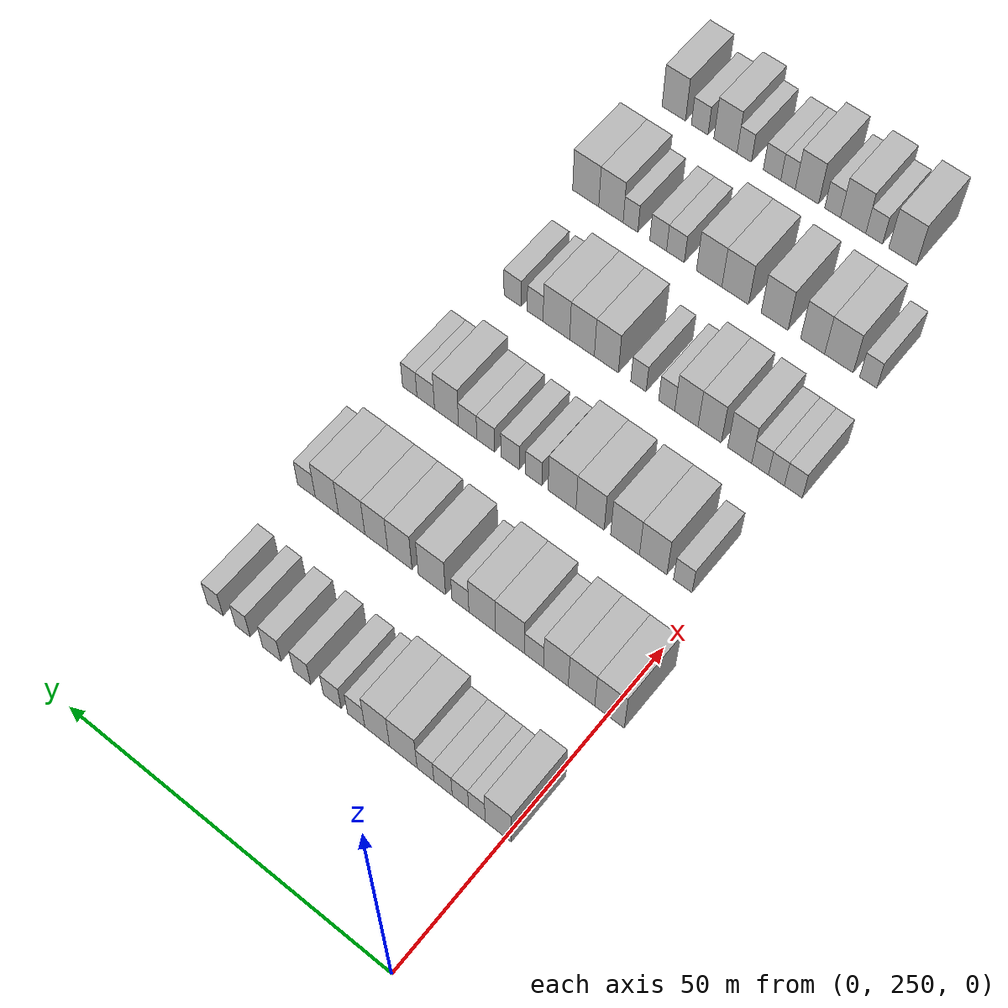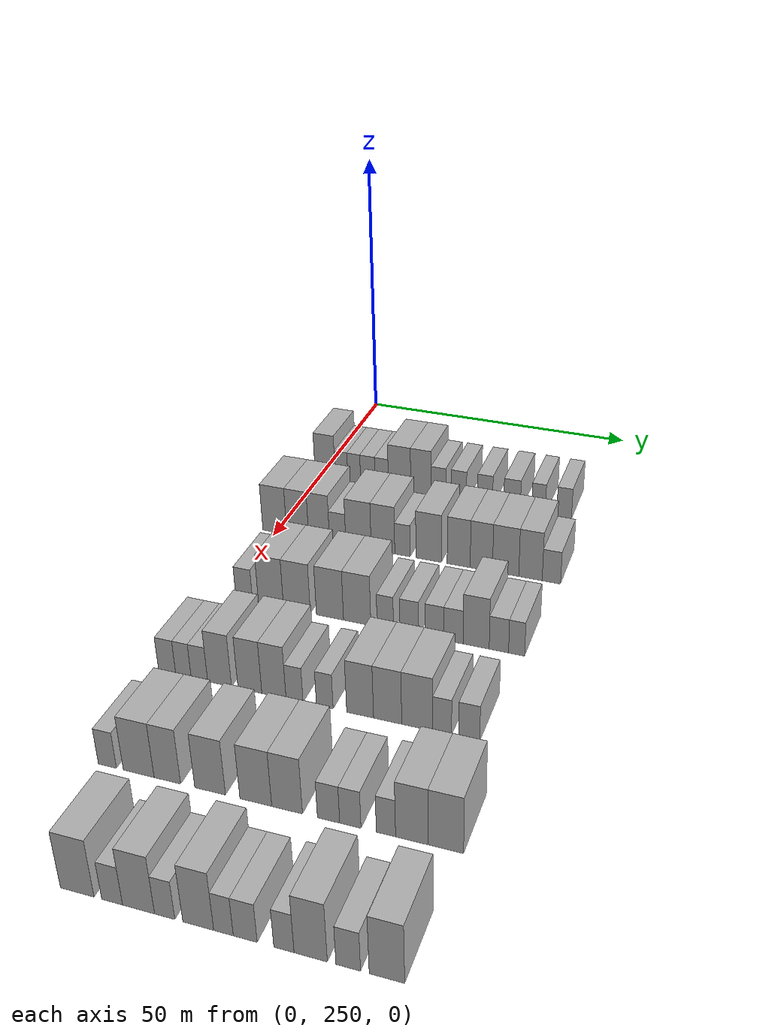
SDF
<sdf version="1.6">
 <world name="default">
  <model name="building_146">
   <static>1</static>
   <pose>25.0000 251.1368 0 0.000000 0.000000 0.000000</pose>
   <link name="link">
    <pose>0 0 4.50 0 0 0</pose>
    <collision name="collision"><geometry><box><size>10.0000 3.8870 9.0000</size></box></geometry></collision>
    <visual name="visual">
     <cast_shadows>0</cast_shadows>
     <geometry><box><size>10.0000 3.8870 9.0000</size></box></geometry>
     <material>
      <script>
       <uri>model://HANNAS_wall/materials/scripts</uri>
       <uri>model://HANNAS_wall/materials/textures</uri>
       <name>vrc/HANNAS_wall</name>
      </script>
     </material>
    </visual>
   </link>
  </model>
  <model name="building_147">
   <static>1</static>
   <pose>25.0000 254.3077 0 0.000000 0.000000 0.000000</pose>
   <link name="link">
    <pose>0 0 3.00 0 0 0</pose>
    <collision name="collision"><geometry><box><size>10.0000 2.4549 6.0000</size></box></geometry></collision>
    <visual name="visual">
     <cast_shadows>0</cast_shadows>
     <geometry><box><size>10.0000 2.4549 6.0000</size></box></geometry>
     <material>
      <script>
       <uri>model://HANNAS_wall/materials/scripts</uri>
       <uri>model://HANNAS_wall/materials/textures</uri>
       <name>vrc/HANNAS_wall</name>
      </script>
     </material>
    </visual>
   </link>
  </model>
  <model name="building_148">
   <static>1</static>
   <pose>25.0000 256.7558 0 0.000000 0.000000 0.000000</pose>
   <link name="link">
    <pose>0 0 3.00 0 0 0</pose>
    <collision name="collision"><geometry><box><size>10.0000 2.4412 6.0000</size></box></geometry></collision>
    <visual name="visual">
     <cast_shadows>0</cast_shadows>
     <geometry><box><size>10.0000 2.4412 6.0000</size></box></geometry>
     <material>
      <script>
       <uri>model://HANNAS_wall/materials/scripts</uri>
       <uri>model://HANNAS_wall/materials/textures</uri>
       <name>vrc/HANNAS_wall</name>
      </script>
     </material>
    </visual>
   </link>
  </model>
  <model name="building_149">
   <static>1</static>
   <pose>25.0000 259.3535 0 0.000000 0.000000 0.000000</pose>
   <link name="link">
    <pose>0 0 3.00 0 0 0</pose>
    <collision name="collision"><geometry><box><size>10.0000 2.7543 6.0000</size></box></geometry></collision>
    <visual name="visual">
     <cast_shadows>0</cast_shadows>
     <geometry><box><size>10.0000 2.7543 6.0000</size></box></geometry>
     <material>
      <script>
       <uri>model://HANNAS_wall/materials/scripts</uri>
       <uri>model://HANNAS_wall/materials/textures</uri>
       <name>vrc/HANNAS_wall</name>
      </script>
     </material>
    </visual>
   </link>
  </model>
  <model name="building_150">
   <static>1</static>
   <pose>25.0000 261.9998 0 0.000000 0.000000 0.000000</pose>
   <link name="link">
    <pose>0 0 3.00 0 0 0</pose>
    <collision name="collision"><geometry><box><size>10.0000 2.5383 6.0000</size></box></geometry></collision>
    <visual name="visual">
     <cast_shadows>0</cast_shadows>
     <geometry><box><size>10.0000 2.5383 6.0000</size></box></geometry>
     <material>
      <script>
       <uri>model://HANNAS_wall/materials/scripts</uri>
       <uri>model://HANNAS_wall/materials/textures</uri>
       <name>vrc/HANNAS_wall</name>
      </script>
     </material>
    </visual>
   </link>
  </model>
  <model name="building_151">
   <static>1</static>
   <pose>25.0000 265.3684 0 0.000000 0.000000 0.000000</pose>
   <link name="link">
    <pose>0 0 4.50 0 0 0</pose>
    <collision name="collision"><geometry><box><size>10.0000 4.1990 9.0000</size></box></geometry></collision>
    <visual name="visual">
     <cast_shadows>0</cast_shadows>
     <geometry><box><size>10.0000 4.1990 9.0000</size></box></geometry>
     <material>
      <script>
       <uri>model://HANNAS_wall/materials/scripts</uri>
       <uri>model://HANNAS_wall/materials/textures</uri>
       <name>vrc/HANNAS_wall</name>
      </script>
     </material>
    </visual>
   </link>
  </model>
  <model name="building_152">
   <static>1</static>
   <pose>25.0000 269.3768 0 0.000000 0.000000 0.000000</pose>
   <link name="link">
    <pose>0 0 4.50 0 0 0</pose>
    <collision name="collision"><geometry><box><size>10.0000 3.8179 9.0000</size></box></geometry></collision>
    <visual name="visual">
     <cast_shadows>0</cast_shadows>
     <geometry><box><size>10.0000 3.8179 9.0000</size></box></geometry>
     <material>
      <script>
       <uri>model://HANNAS_wall/materials/scripts</uri>
       <uri>model://HANNAS_wall/materials/textures</uri>
       <name>vrc/HANNAS_wall</name>
      </script>
     </material>
    </visual>
   </link>
  </model>
  <model name="building_153">
   <static>1</static>
   <pose>25.0000 272.6250 0 0.000000 0.000000 0.000000</pose>
   <link name="link">
    <pose>0 0 3.00 0 0 0</pose>
    <collision name="collision"><geometry><box><size>10.0000 2.6784 6.0000</size></box></geometry></collision>
    <visual name="visual">
     <cast_shadows>0</cast_shadows>
     <geometry><box><size>10.0000 2.6784 6.0000</size></box></geometry>
     <material>
      <script>
       <uri>model://HANNAS_wall/materials/scripts</uri>
       <uri>model://HANNAS_wall/materials/textures</uri>
       <name>vrc/HANNAS_wall</name>
      </script>
     </material>
    </visual>
   </link>
  </model>
  <model name="building_154">
   <static>1</static>
   <pose>25.0000 276.3655 0 0.000000 0.000000 0.000000</pose>
   <link name="link">
    <pose>0 0 3.00 0 0 0</pose>
    <collision name="collision"><geometry><box><size>10.0000 2.8026 6.0000</size></box></geometry></collision>
    <visual name="visual">
     <cast_shadows>0</cast_shadows>
     <geometry><box><size>10.0000 2.8026 6.0000</size></box></geometry>
     <material>
      <script>
       <uri>model://HANNAS_wall/materials/scripts</uri>
       <uri>model://HANNAS_wall/materials/textures</uri>
       <name>vrc/HANNAS_wall</name>
      </script>
     </material>
    </visual>
   </link>
  </model>
  <model name="building_155">
   <static>1</static>
   <pose>25.0000 281.1344 0 0.000000 0.000000 0.000000</pose>
   <link name="link">
    <pose>0 0 3.00 0 0 0</pose>
    <collision name="collision"><geometry><box><size>10.0000 2.7351 6.0000</size></box></geometry></collision>
    <visual name="visual">
     <cast_shadows>0</cast_shadows>
     <geometry><box><size>10.0000 2.7351 6.0000</size></box></geometry>
     <material>
      <script>
       <uri>model://HANNAS_wall/materials/scripts</uri>
       <uri>model://HANNAS_wall/materials/textures</uri>
       <name>vrc/HANNAS_wall</name>
      </script>
     </material>
    </visual>
   </link>
  </model>
  <model name="building_156">
   <static>1</static>
   <pose>25.0000 285.9894 0 0.000000 0.000000 0.000000</pose>
   <link name="link">
    <pose>0 0 3.00 0 0 0</pose>
    <collision name="collision"><geometry><box><size>10.0000 2.9749 6.0000</size></box></geometry></collision>
    <visual name="visual">
     <cast_shadows>0</cast_shadows>
     <geometry><box><size>10.0000 2.9749 6.0000</size></box></geometry>
     <material>
      <script>
       <uri>model://HANNAS_wall/materials/scripts</uri>
       <uri>model://HANNAS_wall/materials/textures</uri>
       <name>vrc/HANNAS_wall</name>
      </script>
     </material>
    </visual>
   </link>
  </model>
  <model name="building_157">
   <static>1</static>
   <pose>25.0000 290.6912 0 0.000000 0.000000 0.000000</pose>
   <link name="link">
    <pose>0 0 3.00 0 0 0</pose>
    <collision name="collision"><geometry><box><size>10.0000 2.4287 6.0000</size></box></geometry></collision>
    <visual name="visual">
     <cast_shadows>0</cast_shadows>
     <geometry><box><size>10.0000 2.4287 6.0000</size></box></geometry>
     <material>
      <script>
       <uri>model://HANNAS_wall/materials/scripts</uri>
       <uri>model://HANNAS_wall/materials/textures</uri>
       <name>vrc/HANNAS_wall</name>
      </script>
     </material>
    </visual>
   </link>
  </model>
  <model name="building_158">
   <static>1</static>
   <pose>25.0000 295.2011 0 0.000000 0.000000 0.000000</pose>
   <link name="link">
    <pose>0 0 3.00 0 0 0</pose>
    <collision name="collision"><geometry><box><size>10.0000 2.5912 6.0000</size></box></geometry></collision>
    <visual name="visual">
     <cast_shadows>0</cast_shadows>
     <geometry><box><size>10.0000 2.5912 6.0000</size></box></geometry>
     <material>
      <script>
       <uri>model://HANNAS_wall/materials/scripts</uri>
       <uri>model://HANNAS_wall/materials/textures</uri>
       <name>vrc/HANNAS_wall</name>
      </script>
     </material>
    </visual>
   </link>
  </model>
  <model name="building_329">
   <static>1</static>
   <pose>44.0000 249.7444 0 0.000000 0.000000 0.000000</pose>
   <link name="link">
    <pose>0 0 4.50 0 0 0</pose>
    <collision name="collision"><geometry><box><size>10.0000 4.3815 9.0000</size></box></geometry></collision>
    <visual name="visual">
     <cast_shadows>0</cast_shadows>
     <geometry><box><size>10.0000 4.3815 9.0000</size></box></geometry>
     <material>
      <script>
       <uri>model://HANNAS_wall/materials/scripts</uri>
       <uri>model://HANNAS_wall/materials/textures</uri>
       <name>vrc/HANNAS_wall</name>
      </script>
     </material>
    </visual>
   </link>
  </model>
  <model name="building_330">
   <static>1</static>
   <pose>44.0000 253.9252 0 0.000000 0.000000 0.000000</pose>
   <link name="link">
    <pose>0 0 4.50 0 0 0</pose>
    <collision name="collision"><geometry><box><size>10.0000 3.9802 9.0000</size></box></geometry></collision>
    <visual name="visual">
     <cast_shadows>0</cast_shadows>
     <geometry><box><size>10.0000 3.9802 9.0000</size></box></geometry>
     <material>
      <script>
       <uri>model://HANNAS_wall/materials/scripts</uri>
       <uri>model://HANNAS_wall/materials/textures</uri>
       <name>vrc/HANNAS_wall</name>
      </script>
     </material>
    </visual>
   </link>
  </model>
  <model name="building_331">
   <static>1</static>
   <pose>44.0000 257.7875 0 0.000000 0.000000 0.000000</pose>
   <link name="link">
    <pose>0 0 4.50 0 0 0</pose>
    <collision name="collision"><geometry><box><size>10.0000 3.7446 9.0000</size></box></geometry></collision>
    <visual name="visual">
     <cast_shadows>0</cast_shadows>
     <geometry><box><size>10.0000 3.7446 9.0000</size></box></geometry>
     <material>
      <script>
       <uri>model://HANNAS_wall/materials/scripts</uri>
       <uri>model://HANNAS_wall/materials/textures</uri>
       <name>vrc/HANNAS_wall</name>
      </script>
     </material>
    </visual>
   </link>
  </model>
  <model name="building_332">
   <static>1</static>
   <pose>44.0000 261.1105 0 0.000000 0.000000 0.000000</pose>
   <link name="link">
    <pose>0 0 3.00 0 0 0</pose>
    <collision name="collision"><geometry><box><size>10.0000 2.9012 6.0000</size></box></geometry></collision>
    <visual name="visual">
     <cast_shadows>0</cast_shadows>
     <geometry><box><size>10.0000 2.9012 6.0000</size></box></geometry>
     <material>
      <script>
       <uri>model://HANNAS_wall/materials/scripts</uri>
       <uri>model://HANNAS_wall/materials/textures</uri>
       <name>vrc/HANNAS_wall</name>
      </script>
     </material>
    </visual>
   </link>
  </model>
  <model name="building_333">
   <static>1</static>
   <pose>44.0000 264.8024 0 0.000000 0.000000 0.000000</pose>
   <link name="link">
    <pose>0 0 4.50 0 0 0</pose>
    <collision name="collision"><geometry><box><size>10.0000 4.4826 9.0000</size></box></geometry></collision>
    <visual name="visual">
     <cast_shadows>0</cast_shadows>
     <geometry><box><size>10.0000 4.4826 9.0000</size></box></geometry>
     <material>
      <script>
       <uri>model://HANNAS_wall/materials/scripts</uri>
       <uri>model://HANNAS_wall/materials/textures</uri>
       <name>vrc/HANNAS_wall</name>
      </script>
     </material>
    </visual>
   </link>
  </model>
  <model name="building_334">
   <static>1</static>
   <pose>44.0000 269.1010 0 0.000000 0.000000 0.000000</pose>
   <link name="link">
    <pose>0 0 4.50 0 0 0</pose>
    <collision name="collision"><geometry><box><size>10.0000 4.1146 9.0000</size></box></geometry></collision>
    <visual name="visual">
     <cast_shadows>0</cast_shadows>
     <geometry><box><size>10.0000 4.1146 9.0000</size></box></geometry>
     <material>
      <script>
       <uri>model://HANNAS_wall/materials/scripts</uri>
       <uri>model://HANNAS_wall/materials/textures</uri>
       <name>vrc/HANNAS_wall</name>
      </script>
     </material>
    </visual>
   </link>
  </model>
  <model name="building_335">
   <static>1</static>
   <pose>44.0000 272.4902 0 0.000000 0.000000 0.000000</pose>
   <link name="link">
    <pose>0 0 3.00 0 0 0</pose>
    <collision name="collision"><geometry><box><size>10.0000 2.6638 6.0000</size></box></geometry></collision>
    <visual name="visual">
     <cast_shadows>0</cast_shadows>
     <geometry><box><size>10.0000 2.6638 6.0000</size></box></geometry>
     <material>
      <script>
       <uri>model://HANNAS_wall/materials/scripts</uri>
       <uri>model://HANNAS_wall/materials/textures</uri>
       <name>vrc/HANNAS_wall</name>
      </script>
     </material>
    </visual>
   </link>
  </model>
  <model name="building_336">
   <static>1</static>
   <pose>44.0000 276.9842 0 0.000000 0.000000 0.000000</pose>
   <link name="link">
    <pose>0 0 4.50 0 0 0</pose>
    <collision name="collision"><geometry><box><size>10.0000 4.3242 9.0000</size></box></geometry></collision>
    <visual name="visual">
     <cast_shadows>0</cast_shadows>
     <geometry><box><size>10.0000 4.3242 9.0000</size></box></geometry>
     <material>
      <script>
       <uri>model://HANNAS_wall/materials/scripts</uri>
       <uri>model://HANNAS_wall/materials/textures</uri>
       <name>vrc/HANNAS_wall</name>
      </script>
     </material>
    </visual>
   </link>
  </model>
  <model name="building_337">
   <static>1</static>
   <pose>44.0000 282.0886 0 0.000000 0.000000 0.000000</pose>
   <link name="link">
    <pose>0 0 4.50 0 0 0</pose>
    <collision name="collision"><geometry><box><size>10.0000 3.8846 9.0000</size></box></geometry></collision>
    <visual name="visual">
     <cast_shadows>0</cast_shadows>
     <geometry><box><size>10.0000 3.8846 9.0000</size></box></geometry>
     <material>
      <script>
       <uri>model://HANNAS_wall/materials/scripts</uri>
       <uri>model://HANNAS_wall/materials/textures</uri>
       <name>vrc/HANNAS_wall</name>
      </script>
     </material>
    </visual>
   </link>
  </model>
  <model name="building_338">
   <static>1</static>
   <pose>44.0000 285.8902 0 0.000000 0.000000 0.000000</pose>
   <link name="link">
    <pose>0 0 4.50 0 0 0</pose>
    <collision name="collision"><geometry><box><size>10.0000 3.7186 9.0000</size></box></geometry></collision>
    <visual name="visual">
     <cast_shadows>0</cast_shadows>
     <geometry><box><size>10.0000 3.7186 9.0000</size></box></geometry>
     <material>
      <script>
       <uri>model://HANNAS_wall/materials/scripts</uri>
       <uri>model://HANNAS_wall/materials/textures</uri>
       <name>vrc/HANNAS_wall</name>
      </script>
     </material>
    </visual>
   </link>
  </model>
  <model name="building_339">
   <static>1</static>
   <pose>44.0000 289.9126 0 0.000000 0.000000 0.000000</pose>
   <link name="link">
    <pose>0 0 4.50 0 0 0</pose>
    <collision name="collision"><geometry><box><size>10.0000 4.3261 9.0000</size></box></geometry></collision>
    <visual name="visual">
     <cast_shadows>0</cast_shadows>
     <geometry><box><size>10.0000 4.3261 9.0000</size></box></geometry>
     <material>
      <script>
       <uri>model://HANNAS_wall/materials/scripts</uri>
       <uri>model://HANNAS_wall/materials/textures</uri>
       <name>vrc/HANNAS_wall</name>
      </script>
     </material>
    </visual>
   </link>
  </model>
  <model name="building_340">
   <static>1</static>
   <pose>44.0000 293.9948 0 0.000000 0.000000 0.000000</pose>
   <link name="link">
    <pose>0 0 4.50 0 0 0</pose>
    <collision name="collision"><geometry><box><size>10.0000 3.8383 9.0000</size></box></geometry></collision>
    <visual name="visual">
     <cast_shadows>0</cast_shadows>
     <geometry><box><size>10.0000 3.8383 9.0000</size></box></geometry>
     <material>
      <script>
       <uri>model://HANNAS_wall/materials/scripts</uri>
       <uri>model://HANNAS_wall/materials/textures</uri>
       <name>vrc/HANNAS_wall</name>
      </script>
     </material>
    </visual>
   </link>
  </model>
  <model name="building_341">
   <static>1</static>
   <pose>44.0000 297.4029 0 0.000000 0.000000 0.000000</pose>
   <link name="link">
    <pose>0 0 3.00 0 0 0</pose>
    <collision name="collision"><geometry><box><size>10.0000 2.9779 6.0000</size></box></geometry></collision>
    <visual name="visual">
     <cast_shadows>0</cast_shadows>
     <geometry><box><size>10.0000 2.9779 6.0000</size></box></geometry>
     <material>
      <script>
       <uri>model://HANNAS_wall/materials/scripts</uri>
       <uri>model://HANNAS_wall/materials/textures</uri>
       <name>vrc/HANNAS_wall</name>
      </script>
     </material>
    </visual>
   </link>
  </model>
  <model name="building_494">
   <static>1</static>
   <pose>63.0000 253.1354 0 0.000000 0.000000 0.000000</pose>
   <link name="link">
    <pose>0 0 3.00 0 0 0</pose>
    <collision name="collision"><geometry><box><size>10.0000 2.8156 6.0000</size></box></geometry></collision>
    <visual name="visual">
     <cast_shadows>0</cast_shadows>
     <geometry><box><size>10.0000 2.8156 6.0000</size></box></geometry>
     <material>
      <script>
       <uri>model://HANNAS_wall/materials/scripts</uri>
       <uri>model://HANNAS_wall/materials/textures</uri>
       <name>vrc/HANNAS_wall</name>
      </script>
     </material>
    </visual>
   </link>
  </model>
  <model name="building_495">
   <static>1</static>
   <pose>63.0000 257.6501 0 0.000000 0.000000 0.000000</pose>
   <link name="link">
    <pose>0 0 4.50 0 0 0</pose>
    <collision name="collision"><geometry><box><size>10.0000 4.2138 9.0000</size></box></geometry></collision>
    <visual name="visual">
     <cast_shadows>0</cast_shadows>
     <geometry><box><size>10.0000 4.2138 9.0000</size></box></geometry>
     <material>
      <script>
       <uri>model://HANNAS_wall/materials/scripts</uri>
       <uri>model://HANNAS_wall/materials/textures</uri>
       <name>vrc/HANNAS_wall</name>
      </script>
     </material>
    </visual>
   </link>
  </model>
  <model name="building_496">
   <static>1</static>
   <pose>63.0000 261.9802 0 0.000000 0.000000 0.000000</pose>
   <link name="link">
    <pose>0 0 4.50 0 0 0</pose>
    <collision name="collision"><geometry><box><size>10.0000 4.4462 9.0000</size></box></geometry></collision>
    <visual name="visual">
     <cast_shadows>0</cast_shadows>
     <geometry><box><size>10.0000 4.4462 9.0000</size></box></geometry>
     <material>
      <script>
       <uri>model://HANNAS_wall/materials/scripts</uri>
       <uri>model://HANNAS_wall/materials/textures</uri>
       <name>vrc/HANNAS_wall</name>
      </script>
     </material>
    </visual>
   </link>
  </model>
  <model name="building_497">
   <static>1</static>
   <pose>63.0000 267.4153 0 0.000000 0.000000 0.000000</pose>
   <link name="link">
    <pose>0 0 4.50 0 0 0</pose>
    <collision name="collision"><geometry><box><size>10.0000 4.4240 9.0000</size></box></geometry></collision>
    <visual name="visual">
     <cast_shadows>0</cast_shadows>
     <geometry><box><size>10.0000 4.4240 9.0000</size></box></geometry>
     <material>
      <script>
       <uri>model://HANNAS_wall/materials/scripts</uri>
       <uri>model://HANNAS_wall/materials/textures</uri>
       <name>vrc/HANNAS_wall</name>
      </script>
     </material>
    </visual>
   </link>
  </model>
  <model name="building_498">
   <static>1</static>
   <pose>63.0000 271.8336 0 0.000000 0.000000 0.000000</pose>
   <link name="link">
    <pose>0 0 4.50 0 0 0</pose>
    <collision name="collision"><geometry><box><size>10.0000 4.4127 9.0000</size></box></geometry></collision>
    <visual name="visual">
     <cast_shadows>0</cast_shadows>
     <geometry><box><size>10.0000 4.4127 9.0000</size></box></geometry>
     <material>
      <script>
       <uri>model://HANNAS_wall/materials/scripts</uri>
       <uri>model://HANNAS_wall/materials/textures</uri>
       <name>vrc/HANNAS_wall</name>
      </script>
     </material>
    </visual>
   </link>
  </model>
  <model name="building_499">
   <static>1</static>
   <pose>63.0000 276.3462 0 0.000000 0.000000 0.000000</pose>
   <link name="link">
    <pose>0 0 3.00 0 0 0</pose>
    <collision name="collision"><geometry><box><size>10.0000 2.6125 6.0000</size></box></geometry></collision>
    <visual name="visual">
     <cast_shadows>0</cast_shadows>
     <geometry><box><size>10.0000 2.6125 6.0000</size></box></geometry>
     <material>
      <script>
       <uri>model://HANNAS_wall/materials/scripts</uri>
       <uri>model://HANNAS_wall/materials/textures</uri>
       <name>vrc/HANNAS_wall</name>
      </script>
     </material>
    </visual>
   </link>
  </model>
  <model name="building_500">
   <static>1</static>
   <pose>63.0000 280.1396 0 0.000000 0.000000 0.000000</pose>
   <link name="link">
    <pose>0 0 3.00 0 0 0</pose>
    <collision name="collision"><geometry><box><size>10.0000 2.9743 6.0000</size></box></geometry></collision>
    <visual name="visual">
     <cast_shadows>0</cast_shadows>
     <geometry><box><size>10.0000 2.9743 6.0000</size></box></geometry>
     <material>
      <script>
       <uri>model://HANNAS_wall/materials/scripts</uri>
       <uri>model://HANNAS_wall/materials/textures</uri>
       <name>vrc/HANNAS_wall</name>
      </script>
     </material>
    </visual>
   </link>
  </model>
  <model name="building_501">
   <static>1</static>
   <pose>63.0000 284.0835 0 0.000000 0.000000 0.000000</pose>
   <link name="link">
    <pose>0 0 3.00 0 0 0</pose>
    <collision name="collision"><geometry><box><size>10.0000 2.9135 6.0000</size></box></geometry></collision>
    <visual name="visual">
     <cast_shadows>0</cast_shadows>
     <geometry><box><size>10.0000 2.9135 6.0000</size></box></geometry>
     <material>
      <script>
       <uri>model://HANNAS_wall/materials/scripts</uri>
       <uri>model://HANNAS_wall/materials/textures</uri>
       <name>vrc/HANNAS_wall</name>
      </script>
     </material>
    </visual>
   </link>
  </model>
  <model name="building_502">
   <static>1</static>
   <pose>63.0000 287.0330 0 0.000000 0.000000 0.000000</pose>
   <link name="link">
    <pose>0 0 3.00 0 0 0</pose>
    <collision name="collision"><geometry><box><size>10.0000 2.9856 6.0000</size></box></geometry></collision>
    <visual name="visual">
     <cast_shadows>0</cast_shadows>
     <geometry><box><size>10.0000 2.9856 6.0000</size></box></geometry>
     <material>
      <script>
       <uri>model://HANNAS_wall/materials/scripts</uri>
       <uri>model://HANNAS_wall/materials/textures</uri>
       <name>vrc/HANNAS_wall</name>
      </script>
     </material>
    </visual>
   </link>
  </model>
  <model name="building_503">
   <static>1</static>
   <pose>63.0000 290.5150 0 0.000000 0.000000 0.000000</pose>
   <link name="link">
    <pose>0 0 4.50 0 0 0</pose>
    <collision name="collision"><geometry><box><size>10.0000 3.9784 9.0000</size></box></geometry></collision>
    <visual name="visual">
     <cast_shadows>0</cast_shadows>
     <geometry><box><size>10.0000 3.9784 9.0000</size></box></geometry>
     <material>
      <script>
       <uri>model://HANNAS_wall/materials/scripts</uri>
       <uri>model://HANNAS_wall/materials/textures</uri>
       <name>vrc/HANNAS_wall</name>
      </script>
     </material>
    </visual>
   </link>
  </model>
  <model name="building_504">
   <static>1</static>
   <pose>63.0000 293.9704 0 0.000000 0.000000 0.000000</pose>
   <link name="link">
    <pose>0 0 3.00 0 0 0</pose>
    <collision name="collision"><geometry><box><size>10.0000 2.9324 6.0000</size></box></geometry></collision>
    <visual name="visual">
     <cast_shadows>0</cast_shadows>
     <geometry><box><size>10.0000 2.9324 6.0000</size></box></geometry>
     <material>
      <script>
       <uri>model://HANNAS_wall/materials/scripts</uri>
       <uri>model://HANNAS_wall/materials/textures</uri>
       <name>vrc/HANNAS_wall</name>
      </script>
     </material>
    </visual>
   </link>
  </model>
  <model name="building_505">
   <static>1</static>
   <pose>63.0000 296.6438 0 0.000000 0.000000 0.000000</pose>
   <link name="link">
    <pose>0 0 3.00 0 0 0</pose>
    <collision name="collision"><geometry><box><size>10.0000 2.4144 6.0000</size></box></geometry></collision>
    <visual name="visual">
     <cast_shadows>0</cast_shadows>
     <geometry><box><size>10.0000 2.4144 6.0000</size></box></geometry>
     <material>
      <script>
       <uri>model://HANNAS_wall/materials/scripts</uri>
       <uri>model://HANNAS_wall/materials/textures</uri>
       <name>vrc/HANNAS_wall</name>
      </script>
     </material>
    </visual>
   </link>
  </model>
  <model name="building_675">
   <static>1</static>
   <pose>82.0000 250.0975 0 0.000000 0.000000 0.000000</pose>
   <link name="link">
    <pose>0 0 3.00 0 0 0</pose>
    <collision name="collision"><geometry><box><size>10.0000 2.7310 6.0000</size></box></geometry></collision>
    <visual name="visual">
     <cast_shadows>0</cast_shadows>
     <geometry><box><size>10.0000 2.7310 6.0000</size></box></geometry>
     <material>
      <script>
       <uri>model://HANNAS_wall/materials/scripts</uri>
       <uri>model://HANNAS_wall/materials/textures</uri>
       <name>vrc/HANNAS_wall</name>
      </script>
     </material>
    </visual>
   </link>
  </model>
  <model name="building_676">
   <static>1</static>
   <pose>82.0000 252.6837 0 0.000000 0.000000 0.000000</pose>
   <link name="link">
    <pose>0 0 3.00 0 0 0</pose>
    <collision name="collision"><geometry><box><size>10.0000 2.4415 6.0000</size></box></geometry></collision>
    <visual name="visual">
     <cast_shadows>0</cast_shadows>
     <geometry><box><size>10.0000 2.4415 6.0000</size></box></geometry>
     <material>
      <script>
       <uri>model://HANNAS_wall/materials/scripts</uri>
       <uri>model://HANNAS_wall/materials/textures</uri>
       <name>vrc/HANNAS_wall</name>
      </script>
     </material>
    </visual>
   </link>
  </model>
  <model name="building_677">
   <static>1</static>
   <pose>82.0000 255.1986 0 0.000000 0.000000 0.000000</pose>
   <link name="link">
    <pose>0 0 3.00 0 0 0</pose>
    <collision name="collision"><geometry><box><size>10.0000 2.5881 6.0000</size></box></geometry></collision>
    <visual name="visual">
     <cast_shadows>0</cast_shadows>
     <geometry><box><size>10.0000 2.5881 6.0000</size></box></geometry>
     <material>
      <script>
       <uri>model://HANNAS_wall/materials/scripts</uri>
       <uri>model://HANNAS_wall/materials/textures</uri>
       <name>vrc/HANNAS_wall</name>
      </script>
     </material>
    </visual>
   </link>
  </model>
  <model name="building_678">
   <static>1</static>
   <pose>82.0000 258.3475 0 0.000000 0.000000 0.000000</pose>
   <link name="link">
    <pose>0 0 4.50 0 0 0</pose>
    <collision name="collision"><geometry><box><size>10.0000 3.7098 9.0000</size></box></geometry></collision>
    <visual name="visual">
     <cast_shadows>0</cast_shadows>
     <geometry><box><size>10.0000 3.7098 9.0000</size></box></geometry>
     <material>
      <script>
       <uri>model://HANNAS_wall/materials/scripts</uri>
       <uri>model://HANNAS_wall/materials/textures</uri>
       <name>vrc/HANNAS_wall</name>
      </script>
     </material>
    </visual>
   </link>
  </model>
  <model name="building_679">
   <static>1</static>
   <pose>82.0000 263.0316 0 0.000000 0.000000 0.000000</pose>
   <link name="link">
    <pose>0 0 4.50 0 0 0</pose>
    <collision name="collision"><geometry><box><size>10.0000 3.6584 9.0000</size></box></geometry></collision>
    <visual name="visual">
     <cast_shadows>0</cast_shadows>
     <geometry><box><size>10.0000 3.6584 9.0000</size></box></geometry>
     <material>
      <script>
       <uri>model://HANNAS_wall/materials/scripts</uri>
       <uri>model://HANNAS_wall/materials/textures</uri>
       <name>vrc/HANNAS_wall</name>
      </script>
     </material>
    </visual>
   </link>
  </model>
  <model name="building_680">
   <static>1</static>
   <pose>82.0000 266.6968 0 0.000000 0.000000 0.000000</pose>
   <link name="link">
    <pose>0 0 4.50 0 0 0</pose>
    <collision name="collision"><geometry><box><size>10.0000 3.6720 9.0000</size></box></geometry></collision>
    <visual name="visual">
     <cast_shadows>0</cast_shadows>
     <geometry><box><size>10.0000 3.6720 9.0000</size></box></geometry>
     <material>
      <script>
       <uri>model://HANNAS_wall/materials/scripts</uri>
       <uri>model://HANNAS_wall/materials/textures</uri>
       <name>vrc/HANNAS_wall</name>
      </script>
     </material>
    </visual>
   </link>
  </model>
  <model name="building_681">
   <static>1</static>
   <pose>82.0000 269.8122 0 0.000000 0.000000 0.000000</pose>
   <link name="link">
    <pose>0 0 3.00 0 0 0</pose>
    <collision name="collision"><geometry><box><size>10.0000 2.5588 6.0000</size></box></geometry></collision>
    <visual name="visual">
     <cast_shadows>0</cast_shadows>
     <geometry><box><size>10.0000 2.5588 6.0000</size></box></geometry>
     <material>
      <script>
       <uri>model://HANNAS_wall/materials/scripts</uri>
       <uri>model://HANNAS_wall/materials/textures</uri>
       <name>vrc/HANNAS_wall</name>
      </script>
     </material>
    </visual>
   </link>
  </model>
  <model name="building_682">
   <static>1</static>
   <pose>82.0000 274.3280 0 0.000000 0.000000 0.000000</pose>
   <link name="link">
    <pose>0 0 3.00 0 0 0</pose>
    <collision name="collision"><geometry><box><size>10.0000 2.4728 6.0000</size></box></geometry></collision>
    <visual name="visual">
     <cast_shadows>0</cast_shadows>
     <geometry><box><size>10.0000 2.4728 6.0000</size></box></geometry>
     <material>
      <script>
       <uri>model://HANNAS_wall/materials/scripts</uri>
       <uri>model://HANNAS_wall/materials/textures</uri>
       <name>vrc/HANNAS_wall</name>
      </script>
     </material>
    </visual>
   </link>
  </model>
  <model name="building_683">
   <static>1</static>
   <pose>82.0000 279.5241 0 0.000000 0.000000 0.000000</pose>
   <link name="link">
    <pose>0 0 4.50 0 0 0</pose>
    <collision name="collision"><geometry><box><size>10.0000 3.9195 9.0000</size></box></geometry></collision>
    <visual name="visual">
     <cast_shadows>0</cast_shadows>
     <geometry><box><size>10.0000 3.9195 9.0000</size></box></geometry>
     <material>
      <script>
       <uri>model://HANNAS_wall/materials/scripts</uri>
       <uri>model://HANNAS_wall/materials/textures</uri>
       <name>vrc/HANNAS_wall</name>
      </script>
     </material>
    </visual>
   </link>
  </model>
  <model name="building_684">
   <static>1</static>
   <pose>82.0000 283.5116 0 0.000000 0.000000 0.000000</pose>
   <link name="link">
    <pose>0 0 4.50 0 0 0</pose>
    <collision name="collision"><geometry><box><size>10.0000 4.0556 9.0000</size></box></geometry></collision>
    <visual name="visual">
     <cast_shadows>0</cast_shadows>
     <geometry><box><size>10.0000 4.0556 9.0000</size></box></geometry>
     <material>
      <script>
       <uri>model://HANNAS_wall/materials/scripts</uri>
       <uri>model://HANNAS_wall/materials/textures</uri>
       <name>vrc/HANNAS_wall</name>
      </script>
     </material>
    </visual>
   </link>
  </model>
  <model name="building_685">
   <static>1</static>
   <pose>82.0000 287.7472 0 0.000000 0.000000 0.000000</pose>
   <link name="link">
    <pose>0 0 4.50 0 0 0</pose>
    <collision name="collision"><geometry><box><size>10.0000 4.4154 9.0000</size></box></geometry></collision>
    <visual name="visual">
     <cast_shadows>0</cast_shadows>
     <geometry><box><size>10.0000 4.4154 9.0000</size></box></geometry>
     <material>
      <script>
       <uri>model://HANNAS_wall/materials/scripts</uri>
       <uri>model://HANNAS_wall/materials/textures</uri>
       <name>vrc/HANNAS_wall</name>
      </script>
     </material>
    </visual>
   </link>
  </model>
  <model name="building_686">
   <static>1</static>
   <pose>82.0000 291.2755 0 0.000000 0.000000 0.000000</pose>
   <link name="link">
    <pose>0 0 3.00 0 0 0</pose>
    <collision name="collision"><geometry><box><size>10.0000 2.6412 6.0000</size></box></geometry></collision>
    <visual name="visual">
     <cast_shadows>0</cast_shadows>
     <geometry><box><size>10.0000 2.6412 6.0000</size></box></geometry>
     <material>
      <script>
       <uri>model://HANNAS_wall/materials/scripts</uri>
       <uri>model://HANNAS_wall/materials/textures</uri>
       <name>vrc/HANNAS_wall</name>
      </script>
     </material>
    </visual>
   </link>
  </model>
  <model name="building_687">
   <static>1</static>
   <pose>82.0000 295.0561 0 0.000000 0.000000 0.000000</pose>
   <link name="link">
    <pose>0 0 3.00 0 0 0</pose>
    <collision name="collision"><geometry><box><size>10.0000 2.9200 6.0000</size></box></geometry></collision>
    <visual name="visual">
     <cast_shadows>0</cast_shadows>
     <geometry><box><size>10.0000 2.9200 6.0000</size></box></geometry>
     <material>
      <script>
       <uri>model://HANNAS_wall/materials/scripts</uri>
       <uri>model://HANNAS_wall/materials/textures</uri>
       <name>vrc/HANNAS_wall</name>
      </script>
     </material>
    </visual>
   </link>
  </model>
  <model name="building_850">
   <static>1</static>
   <pose>101.0000 251.7224 0 0.000000 0.000000 0.000000</pose>
   <link name="link">
    <pose>0 0 3.00 0 0 0</pose>
    <collision name="collision"><geometry><box><size>10.0000 2.6573 6.0000</size></box></geometry></collision>
    <visual name="visual">
     <cast_shadows>0</cast_shadows>
     <geometry><box><size>10.0000 2.6573 6.0000</size></box></geometry>
     <material>
      <script>
       <uri>model://HANNAS_wall/materials/scripts</uri>
       <uri>model://HANNAS_wall/materials/textures</uri>
       <name>vrc/HANNAS_wall</name>
      </script>
     </material>
    </visual>
   </link>
  </model>
  <model name="building_851">
   <static>1</static>
   <pose>101.0000 256.2830 0 0.000000 0.000000 0.000000</pose>
   <link name="link">
    <pose>0 0 4.50 0 0 0</pose>
    <collision name="collision"><geometry><box><size>10.0000 4.4638 9.0000</size></box></geometry></collision>
    <visual name="visual">
     <cast_shadows>0</cast_shadows>
     <geometry><box><size>10.0000 4.4638 9.0000</size></box></geometry>
     <material>
      <script>
       <uri>model://HANNAS_wall/materials/scripts</uri>
       <uri>model://HANNAS_wall/materials/textures</uri>
       <name>vrc/HANNAS_wall</name>
      </script>
     </material>
    </visual>
   </link>
  </model>
  <model name="building_852">
   <static>1</static>
   <pose>101.0000 260.4087 0 0.000000 0.000000 0.000000</pose>
   <link name="link">
    <pose>0 0 4.50 0 0 0</pose>
    <collision name="collision"><geometry><box><size>10.0000 3.7876 9.0000</size></box></geometry></collision>
    <visual name="visual">
     <cast_shadows>0</cast_shadows>
     <geometry><box><size>10.0000 3.7876 9.0000</size></box></geometry>
     <material>
      <script>
       <uri>model://HANNAS_wall/materials/scripts</uri>
       <uri>model://HANNAS_wall/materials/textures</uri>
       <name>vrc/HANNAS_wall</name>
      </script>
     </material>
    </visual>
   </link>
  </model>
  <model name="building_853">
   <static>1</static>
   <pose>101.0000 266.4518 0 0.000000 0.000000 0.000000</pose>
   <link name="link">
    <pose>0 0 4.50 0 0 0</pose>
    <collision name="collision"><geometry><box><size>10.0000 4.2985 9.0000</size></box></geometry></collision>
    <visual name="visual">
     <cast_shadows>0</cast_shadows>
     <geometry><box><size>10.0000 4.2985 9.0000</size></box></geometry>
     <material>
      <script>
       <uri>model://HANNAS_wall/materials/scripts</uri>
       <uri>model://HANNAS_wall/materials/textures</uri>
       <name>vrc/HANNAS_wall</name>
      </script>
     </material>
    </visual>
   </link>
  </model>
  <model name="building_854">
   <static>1</static>
   <pose>101.0000 272.7795 0 0.000000 0.000000 0.000000</pose>
   <link name="link">
    <pose>0 0 4.50 0 0 0</pose>
    <collision name="collision"><geometry><box><size>10.0000 4.3569 9.0000</size></box></geometry></collision>
    <visual name="visual">
     <cast_shadows>0</cast_shadows>
     <geometry><box><size>10.0000 4.3569 9.0000</size></box></geometry>
     <material>
      <script>
       <uri>model://HANNAS_wall/materials/scripts</uri>
       <uri>model://HANNAS_wall/materials/textures</uri>
       <name>vrc/HANNAS_wall</name>
      </script>
     </material>
    </visual>
   </link>
  </model>
  <model name="building_855">
   <static>1</static>
   <pose>101.0000 277.0358 0 0.000000 0.000000 0.000000</pose>
   <link name="link">
    <pose>0 0 4.50 0 0 0</pose>
    <collision name="collision"><geometry><box><size>10.0000 4.1556 9.0000</size></box></geometry></collision>
    <visual name="visual">
     <cast_shadows>0</cast_shadows>
     <geometry><box><size>10.0000 4.1556 9.0000</size></box></geometry>
     <material>
      <script>
       <uri>model://HANNAS_wall/materials/scripts</uri>
       <uri>model://HANNAS_wall/materials/textures</uri>
       <name>vrc/HANNAS_wall</name>
      </script>
     </material>
    </visual>
   </link>
  </model>
  <model name="building_856">
   <static>1</static>
   <pose>101.0000 282.5883 0 0.000000 0.000000 0.000000</pose>
   <link name="link">
    <pose>0 0 3.00 0 0 0</pose>
    <collision name="collision"><geometry><box><size>10.0000 2.9494 6.0000</size></box></geometry></collision>
    <visual name="visual">
     <cast_shadows>0</cast_shadows>
     <geometry><box><size>10.0000 2.9494 6.0000</size></box></geometry>
     <material>
      <script>
       <uri>model://HANNAS_wall/materials/scripts</uri>
       <uri>model://HANNAS_wall/materials/textures</uri>
       <name>vrc/HANNAS_wall</name>
      </script>
     </material>
    </visual>
   </link>
  </model>
  <model name="building_857">
   <static>1</static>
   <pose>101.0000 285.4588 0 0.000000 0.000000 0.000000</pose>
   <link name="link">
    <pose>0 0 3.00 0 0 0</pose>
    <collision name="collision"><geometry><box><size>10.0000 2.7916 6.0000</size></box></geometry></collision>
    <visual name="visual">
     <cast_shadows>0</cast_shadows>
     <geometry><box><size>10.0000 2.7916 6.0000</size></box></geometry>
     <material>
      <script>
       <uri>model://HANNAS_wall/materials/scripts</uri>
       <uri>model://HANNAS_wall/materials/textures</uri>
       <name>vrc/HANNAS_wall</name>
      </script>
     </material>
    </visual>
   </link>
  </model>
  <model name="building_858">
   <static>1</static>
   <pose>101.0000 290.0957 0 0.000000 0.000000 0.000000</pose>
   <link name="link">
    <pose>0 0 3.00 0 0 0</pose>
    <collision name="collision"><geometry><box><size>10.0000 2.4822 6.0000</size></box></geometry></collision>
    <visual name="visual">
     <cast_shadows>0</cast_shadows>
     <geometry><box><size>10.0000 2.4822 6.0000</size></box></geometry>
     <material>
      <script>
       <uri>model://HANNAS_wall/materials/scripts</uri>
       <uri>model://HANNAS_wall/materials/textures</uri>
       <name>vrc/HANNAS_wall</name>
      </script>
     </material>
    </visual>
   </link>
  </model>
  <model name="building_859">
   <static>1</static>
   <pose>101.0000 293.4083 0 0.000000 0.000000 0.000000</pose>
   <link name="link">
    <pose>0 0 4.50 0 0 0</pose>
    <collision name="collision"><geometry><box><size>10.0000 4.1430 9.0000</size></box></geometry></collision>
    <visual name="visual">
     <cast_shadows>0</cast_shadows>
     <geometry><box><size>10.0000 4.1430 9.0000</size></box></geometry>
     <material>
      <script>
       <uri>model://HANNAS_wall/materials/scripts</uri>
       <uri>model://HANNAS_wall/materials/textures</uri>
       <name>vrc/HANNAS_wall</name>
      </script>
     </material>
    </visual>
   </link>
  </model>
  <model name="building_860">
   <static>1</static>
   <pose>101.0000 297.7137 0 0.000000 0.000000 0.000000</pose>
   <link name="link">
    <pose>0 0 4.50 0 0 0</pose>
    <collision name="collision"><geometry><box><size>10.0000 4.4679 9.0000</size></box></geometry></collision>
    <visual name="visual">
     <cast_shadows>0</cast_shadows>
     <geometry><box><size>10.0000 4.4679 9.0000</size></box></geometry>
     <material>
      <script>
       <uri>model://HANNAS_wall/materials/scripts</uri>
       <uri>model://HANNAS_wall/materials/textures</uri>
       <name>vrc/HANNAS_wall</name>
      </script>
     </material>
    </visual>
   </link>
  </model>
  <model name="building_1013">
   <static>1</static>
   <pose>120.0000 259.0833 0 0.000000 0.000000 0.000000</pose>
   <link name="link">
    <pose>0 0 4.50 0 0 0</pose>
    <collision name="collision"><geometry><box><size>10.0000 4.4214 9.0000</size></box></geometry></collision>
    <visual name="visual">
     <cast_shadows>0</cast_shadows>
     <geometry><box><size>10.0000 4.4214 9.0000</size></box></geometry>
     <material>
      <script>
       <uri>model://HANNAS_wall/materials/scripts</uri>
       <uri>model://HANNAS_wall/materials/textures</uri>
       <name>vrc/HANNAS_wall</name>
      </script>
     </material>
    </visual>
   </link>
  </model>
  <model name="building_1014">
   <static>1</static>
   <pose>120.0000 263.6417 0 0.000000 0.000000 0.000000</pose>
   <link name="link">
    <pose>0 0 3.00 0 0 0</pose>
    <collision name="collision"><geometry><box><size>10.0000 2.6953 6.0000</size></box></geometry></collision>
    <visual name="visual">
     <cast_shadows>0</cast_shadows>
     <geometry><box><size>10.0000 2.6953 6.0000</size></box></geometry>
     <material>
      <script>
       <uri>model://HANNAS_wall/materials/scripts</uri>
       <uri>model://HANNAS_wall/materials/textures</uri>
       <name>vrc/HANNAS_wall</name>
      </script>
     </material>
    </visual>
   </link>
  </model>
  <model name="building_1015">
   <static>1</static>
   <pose>120.0000 267.0368 0 0.000000 0.000000 0.000000</pose>
   <link name="link">
    <pose>0 0 4.50 0 0 0</pose>
    <collision name="collision"><geometry><box><size>10.0000 4.0949 9.0000</size></box></geometry></collision>
    <visual name="visual">
     <cast_shadows>0</cast_shadows>
     <geometry><box><size>10.0000 4.0949 9.0000</size></box></geometry>
     <material>
      <script>
       <uri>model://HANNAS_wall/materials/scripts</uri>
       <uri>model://HANNAS_wall/materials/textures</uri>
       <name>vrc/HANNAS_wall</name>
      </script>
     </material>
    </visual>
   </link>
  </model>
  <model name="building_1016">
   <static>1</static>
   <pose>120.0000 270.3670 0 0.000000 0.000000 0.000000</pose>
   <link name="link">
    <pose>0 0 3.00 0 0 0</pose>
    <collision name="collision"><geometry><box><size>10.0000 2.5655 6.0000</size></box></geometry></collision>
    <visual name="visual">
     <cast_shadows>0</cast_shadows>
     <geometry><box><size>10.0000 2.5655 6.0000</size></box></geometry>
     <material>
      <script>
       <uri>model://HANNAS_wall/materials/scripts</uri>
       <uri>model://HANNAS_wall/materials/textures</uri>
       <name>vrc/HANNAS_wall</name>
      </script>
     </material>
    </visual>
   </link>
  </model>
  <model name="building_1017">
   <static>1</static>
   <pose>120.0000 274.5681 0 0.000000 0.000000 0.000000</pose>
   <link name="link">
    <pose>0 0 4.50 0 0 0</pose>
    <collision name="collision"><geometry><box><size>10.0000 3.8367 9.0000</size></box></geometry></collision>
    <visual name="visual">
     <cast_shadows>0</cast_shadows>
     <geometry><box><size>10.0000 3.8367 9.0000</size></box></geometry>
     <material>
      <script>
       <uri>model://HANNAS_wall/materials/scripts</uri>
       <uri>model://HANNAS_wall/materials/textures</uri>
       <name>vrc/HANNAS_wall</name>
      </script>
     </material>
    </visual>
   </link>
  </model>
  <model name="building_1018">
   <static>1</static>
   <pose>120.0000 277.6909 0 0.000000 0.000000 0.000000</pose>
   <link name="link">
    <pose>0 0 3.00 0 0 0</pose>
    <collision name="collision"><geometry><box><size>10.0000 2.4091 6.0000</size></box></geometry></collision>
    <visual name="visual">
     <cast_shadows>0</cast_shadows>
     <geometry><box><size>10.0000 2.4091 6.0000</size></box></geometry>
     <material>
      <script>
       <uri>model://HANNAS_wall/materials/scripts</uri>
       <uri>model://HANNAS_wall/materials/textures</uri>
       <name>vrc/HANNAS_wall</name>
      </script>
     </material>
    </visual>
   </link>
  </model>
  <model name="building_1019">
   <static>1</static>
   <pose>120.0000 280.3498 0 0.000000 0.000000 0.000000</pose>
   <link name="link">
    <pose>0 0 3.00 0 0 0</pose>
    <collision name="collision"><geometry><box><size>10.0000 2.9088 6.0000</size></box></geometry></collision>
    <visual name="visual">
     <cast_shadows>0</cast_shadows>
     <geometry><box><size>10.0000 2.9088 6.0000</size></box></geometry>
     <material>
      <script>
       <uri>model://HANNAS_wall/materials/scripts</uri>
       <uri>model://HANNAS_wall/materials/textures</uri>
       <name>vrc/HANNAS_wall</name>
      </script>
     </material>
    </visual>
   </link>
  </model>
  <model name="building_1020">
   <static>1</static>
   <pose>120.0000 285.0135 0 0.000000 0.000000 0.000000</pose>
   <link name="link">
    <pose>0 0 3.00 0 0 0</pose>
    <collision name="collision"><geometry><box><size>10.0000 2.4185 6.0000</size></box></geometry></collision>
    <visual name="visual">
     <cast_shadows>0</cast_shadows>
     <geometry><box><size>10.0000 2.4185 6.0000</size></box></geometry>
     <material>
      <script>
       <uri>model://HANNAS_wall/materials/scripts</uri>
       <uri>model://HANNAS_wall/materials/textures</uri>
       <name>vrc/HANNAS_wall</name>
      </script>
     </material>
    </visual>
   </link>
  </model>
  <model name="building_1021">
   <static>1</static>
   <pose>120.0000 288.1876 0 0.000000 0.000000 0.000000</pose>
   <link name="link">
    <pose>0 0 4.50 0 0 0</pose>
    <collision name="collision"><geometry><box><size>10.0000 3.9299 9.0000</size></box></geometry></collision>
    <visual name="visual">
     <cast_shadows>0</cast_shadows>
     <geometry><box><size>10.0000 3.9299 9.0000</size></box></geometry>
     <material>
      <script>
       <uri>model://HANNAS_wall/materials/scripts</uri>
       <uri>model://HANNAS_wall/materials/textures</uri>
       <name>vrc/HANNAS_wall</name>
      </script>
     </material>
    </visual>
   </link>
  </model>
  <model name="building_1022">
   <static>1</static>
   <pose>120.0000 292.5802 0 0.000000 0.000000 0.000000</pose>
   <link name="link">
    <pose>0 0 3.00 0 0 0</pose>
    <collision name="collision"><geometry><box><size>10.0000 2.8552 6.0000</size></box></geometry></collision>
    <visual name="visual">
     <cast_shadows>0</cast_shadows>
     <geometry><box><size>10.0000 2.8552 6.0000</size></box></geometry>
     <material>
      <script>
       <uri>model://HANNAS_wall/materials/scripts</uri>
       <uri>model://HANNAS_wall/materials/textures</uri>
       <name>vrc/HANNAS_wall</name>
      </script>
     </material>
    </visual>
   </link>
  </model>
  <model name="building_1023">
   <static>1</static>
   <pose>120.0000 297.0300 0 0.000000 0.000000 0.000000</pose>
   <link name="link">
    <pose>0 0 4.50 0 0 0</pose>
    <collision name="collision"><geometry><box><size>10.0000 4.0445 9.0000</size></box></geometry></collision>
    <visual name="visual">
     <cast_shadows>0</cast_shadows>
     <geometry><box><size>10.0000 4.0445 9.0000</size></box></geometry>
     <material>
      <script>
       <uri>model://HANNAS_wall/materials/scripts</uri>
       <uri>model://HANNAS_wall/materials/textures</uri>
       <name>vrc/HANNAS_wall</name>
      </script>
     </material>
    </visual>
   </link>
  </model>
 </world>
</sdf>
